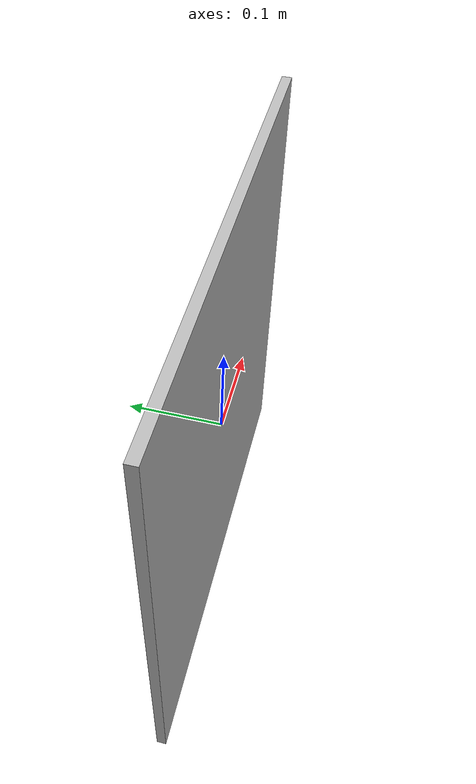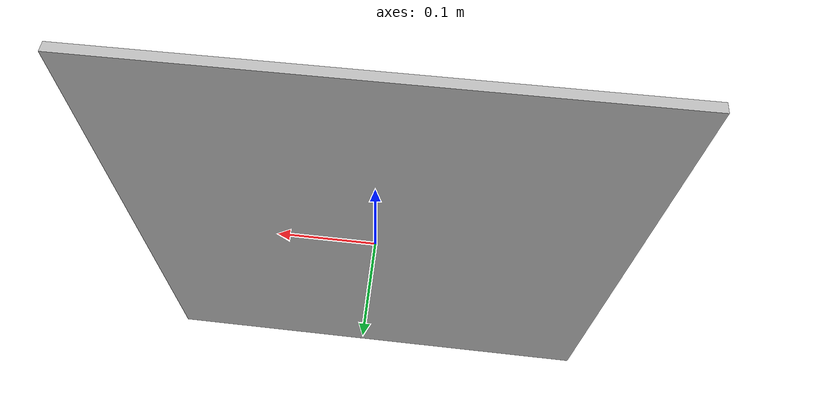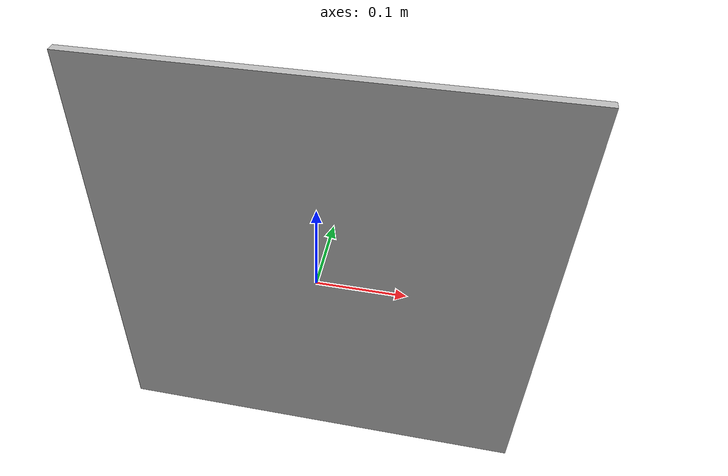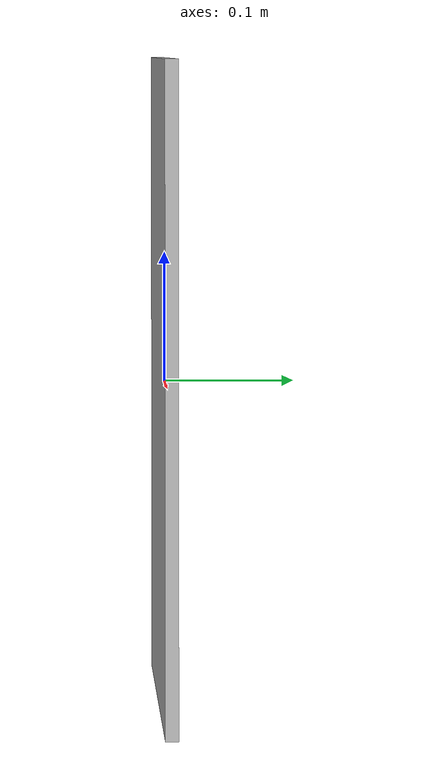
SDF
<?xml version="1.0"?>
<sdf version="1.6">
  <model name="qr_information_desk">
    <static>true</static>
    <link name="link">
      <visual name="visual">
        <geometry>
          <box>
            <size>0.5 0.01 0.5</size>
          </box>
        </geometry>
        <material>
          <script>
            <uri>model://qr_information_desk/materials/scripts</uri>
            <uri>model://qr_information_desk/materials/textures</uri>
            <name>QR_INFORMATION_DESK</name>
          </script>
        </material>
      </visual>
      <collision name="collision">
        <geometry>
          <box>
            <size>0.5 0.01 0.5</size>
          </box>
        </geometry>
      </collision>
    </link>
  </model>
</sdf>
